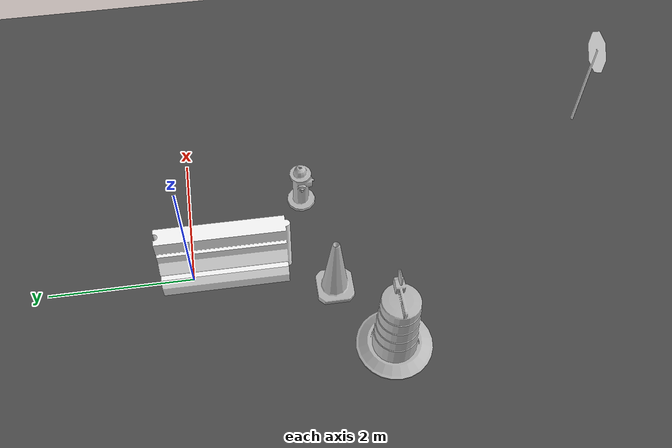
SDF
<sdf version="1.7">
 <world name="default">
  <light name="sun" type="directional">
   <pose>0 0 10 0 -0 0</pose>
   <diffuse>0.8 0.8 0.8 1</diffuse>
   <specular>0.2 0.2 0.2 1</specular>
   <attenuation>
    <range>1000</range>
    <constant>0.9</constant>
    <linear>0.01</linear>
    <quadratic>0.001</quadratic>
   </attenuation>
   <direction>-0.5 0.1 -0.9</direction>
   <spot><inner_angle>0</inner_angle><outer_angle>0</outer_angle><falloff>0</falloff></spot>
  </light>
  <model name="ground_plane">
   <static>1</static>
   <link name="link">
    <collision name="collision">
     <geometry><plane><normal>0 0 1</normal><size>100 100</size></plane></geometry>
     <surface>
      <contact><collide_bitmask>65535</collide_bitmask></contact>
      <friction><ode><mu>100</mu><mu2>50</mu2></ode></friction>
     </surface>
    </collision>
    <visual name="visual">
     <cast_shadows>0</cast_shadows>
     <geometry><plane><normal>0 0 1</normal><size>100 100</size></plane></geometry>
     <material>
      <script><uri>file://media/materials/scripts/gazebo.material</uri><name>Gazebo/Grey</name></script>
     </material>
    </visual>
   </link>
  </model>
  <gravity>0 0 -9.8</gravity>
  <magnetic_field>6e-06 2.3e-05 -4.2e-05</magnetic_field>
  <atmosphere type="adiabatic"/>
  <physics type="ode">
   <max_step_size>0.001</max_step_size>
   <real_time_factor>1</real_time_factor>
   <real_time_update_rate>1000</real_time_update_rate>
  </physics>
  <scene><ambient>0.4 0.4 0.4 1</ambient><background>0.7 0.7 0.7 1</background><shadows>1</shadows></scene>
  <spherical_coordinates>
   <surface_model>EARTH_WGS84</surface_model>
   <latitude_deg>0</latitude_deg>
   <longitude_deg>0</longitude_deg>
   <elevation>0</elevation>
   <heading_deg>0</heading_deg>
  </spherical_coordinates>
  <model name="asphalt_plane">
   <static>1</static>
   <link name="link">
    <collision name="collision"><geometry><box><size>20 20 0.1</size></box></geometry></collision>
    <visual name="visual">
     <cast_shadows>0</cast_shadows>
     <geometry><box><size>20 20 0.1</size></box></geometry>
     <material>
      <script>
       <uri>model://asphalt_plane/materials/scripts</uri>
       <uri>model://asphalt_plane/materials/textures</uri>
       <name>vrc/asphalt</name>
      </script>
     </material>
    </visual>
   </link>
   <pose>0.282722 -1.10715 0 0 -0 0</pose>
  </model>
  <model name="Construction Barrel">
   <link name="link">
    <inertial>
     <pose>0 0 0.4 0 -0 0</pose>
     <mass>500</mass>
     <inertia><ixx>51.2096</ixx><iyy>51.2096</iyy><izz>25</izz><ixy>0</ixy><ixz>0</ixz><iyz>0</iyz></inertia>
    </inertial>
    <collision name="collision">
     <geometry><mesh><uri>model://construction_barrel/meshes/construction_barrel.dae</uri></mesh></geometry>
    </collision>
    <visual name="visual">
     <geometry><mesh><uri>model://construction_barrel/meshes/construction_barrel.dae</uri></mesh></geometry>
    </visual>
   </link>
   <pose>-1.37945 -2.57436 0.049999 -1e-06 -2e-06 6.6e-05</pose>
  </model>
  <model name="Construction Cone">
   <link name="link">
    <collision name="collision">
     <geometry>
      <mesh><scale>10 10 10</scale><uri>model://construction_cone/meshes/construction_cone.dae</uri></mesh>
     </geometry>
    </collision>
    <visual name="visual">
     <geometry>
      <mesh><scale>10 10 10</scale><uri>model://construction_cone/meshes/construction_cone.dae</uri></mesh>
     </geometry>
    </visual>
    <inertial>
     <inertia><ixx>1</ixx><ixy>0</ixy><ixz>0</ixz><iyy>1</iyy><iyz>0</iyz><izz>1</izz></inertia>
     <mass>1</mass>
    </inertial>
   </link>
   <pose>-0.419955 -1.92608 0.05 0 1e-06 0</pose>
  </model>
  <model name="drc_practice_white_jersey_barrier">
   <static>1</static>
   <link name="link">
    <visual name="visual">
     <geometry>
      <mesh><uri>model://drc_practice_white_jersey_barrier/meshes/jersey_barrier.dae</uri></mesh>
     </geometry>
    </visual>
    <collision name="collision">
     <geometry>
      <mesh><uri>model://drc_practice_white_jersey_barrier/meshes/jersey_barrier.dae</uri></mesh>
     </geometry>
    </collision>
   </link>
   <pose>0.069975 -0.455761 0 0 -0 0</pose>
  </model>
  <model name="fire_hydrant">
   <static>1</static>
   <link name="link">
    <collision name="collision">
     <geometry><mesh><uri>model://fire_hydrant/meshes/fire_hydrant.dae</uri></mesh></geometry>
    </collision>
    <visual name="visual">
     <geometry><mesh><uri>model://fire_hydrant/meshes/fire_hydrant.dae</uri></mesh></geometry>
    </visual>
   </link>
   <pose>1.07194 -1.64932 0 0 -0 0</pose>
  </model>
  <model name="Stop Sign">
   <static>1</static>
   <link name="link">
    <collision name="collision">
     <geometry><mesh><uri>model://stop_sign/meshes/stop_sign.dae</uri></mesh></geometry>
    </collision>
    <visual name="visual">
     <geometry><mesh><uri>model://stop_sign/meshes/stop_sign.dae</uri></mesh></geometry>
     <material>
      <script>
       <uri>model://stop_sign/materials/scripts</uri>
       <uri>model://stop_sign/materials/textures</uri>
       <name>StopSign/Diffuse</name>
      </script>
     </material>
    </visual>
   </link>
   <pose>2.10025 -6.15569 0 0 -0 0</pose>
  </model>
 </world>
</sdf>
